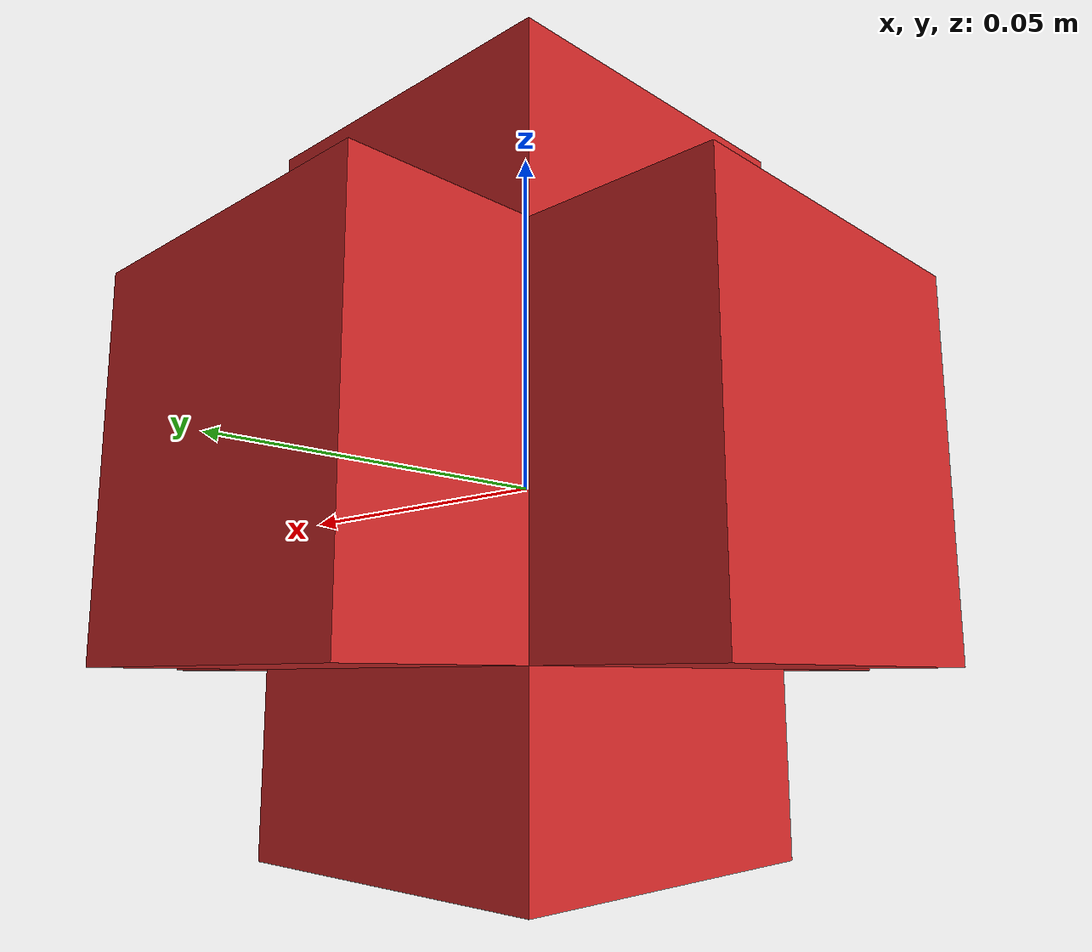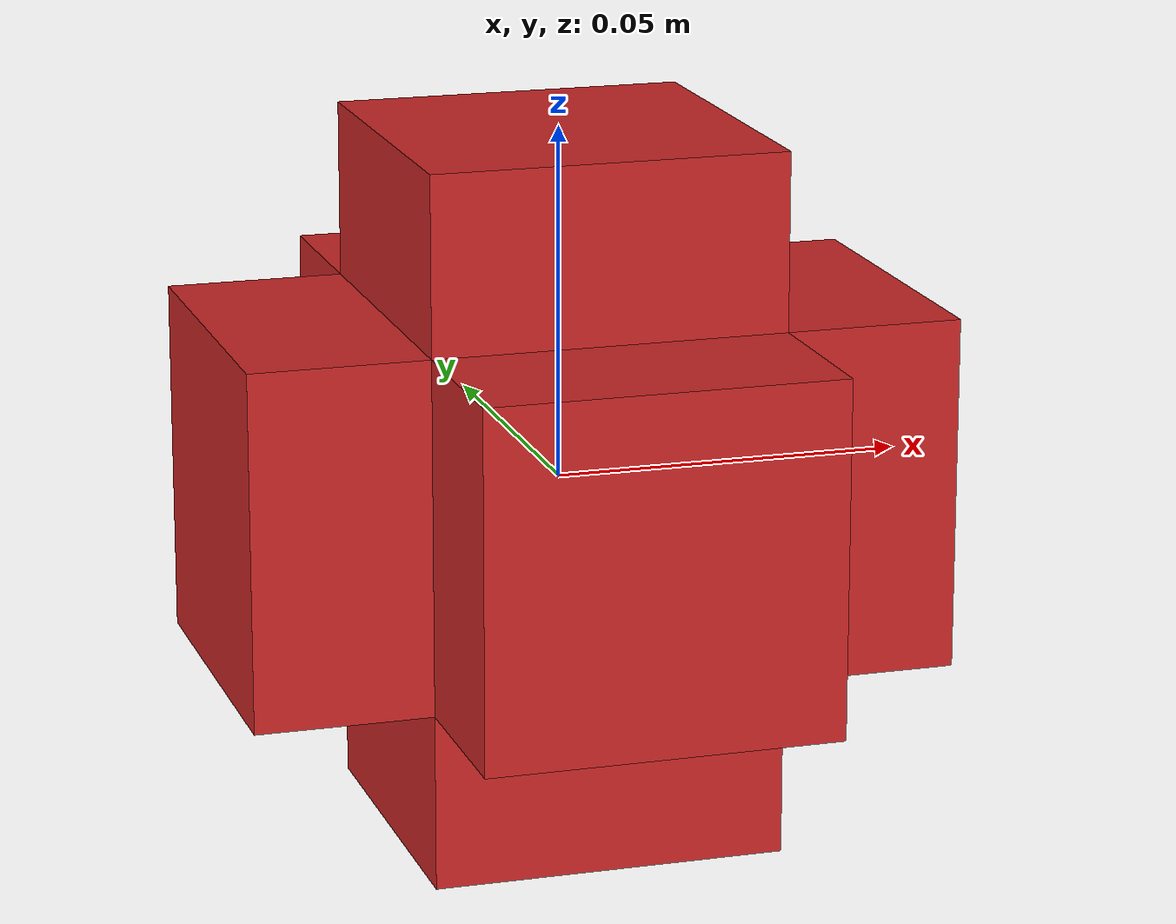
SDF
<sdf version='1.7'>
  <model name='chechsr'>
    <link name='base_link'>
      <inertial>
        <pose>0 0 0 0 0 0</pose>
        <mass>0.3</mass>
        <inertia>
          <ixx>0.003</ixx> <ixy>0</ixy> <ixz>0</ixz>
          <iyy>0.003</iyy> <iyz>0</iyz> <izz>0.003</izz>
        </inertia>
      </inertial>

      <collision name='base_link_fixed_joint_lump__platex_collision'>
        <pose>0 0 0 0 0 0</pose>
        <geometry>
          <box> <size>0.1 0.05 0.05</size> </box>
        </geometry>
      </collision>

      <collision name='base_link_fixed_joint_lump__platey_collision_1'>
        <pose>0 0 0 0 0 0</pose>
        <geometry>
          <box> <size>0.05 0.1 0.05</size> </box>
        </geometry>
      </collision>

      <collision name='base_link_fixed_joint_lump__platez_collision_2'>
        <pose>0 0 0 0 0 0</pose>
        <geometry>
          <box> <size>0.05 0.05 0.1</size> </box>
        </geometry>
      </collision>

      <visual name='base_link_fixed_joint_lump__platex_visual'>
        <pose>0 0 0 0 0 0</pose>
        <geometry>
          <box> <size>0.1 0.05 0.05</size> </box>
        </geometry>
        <material>
          <script>
            <name>Gazebo/Red</name>
            <uri>file://media/materials/scripts/gazebo.material</uri>
          </script>
        </material>
      </visual>

      <visual name='base_link_fixed_joint_lump__platey_visual_1'>
        <pose>0 0 0 0 0 0</pose>
        <geometry>
          <box> <size>0.05 0.1 0.05</size> </box>
        </geometry>
        <material>
          <script>
            <name>Gazebo/Red</name>
            <uri>file://media/materials/scripts/gazebo.material</uri>
          </script>
        </material>
      </visual>

      <visual name='base_link_fixed_joint_lump__platez_visual_2'>
        <pose>0 0 0 0 0 0</pose>
        <geometry>
          <box> <size>0.05 0.05 0.1</size> </box>
        </geometry>
        <material>
          <script>
            <name>Gazebo/Red</name>
            <uri>file://media/materials/scripts/gazebo.material</uri>
          </script>
        </material>
      </visual>

    </link>
  </model>
</sdf>
